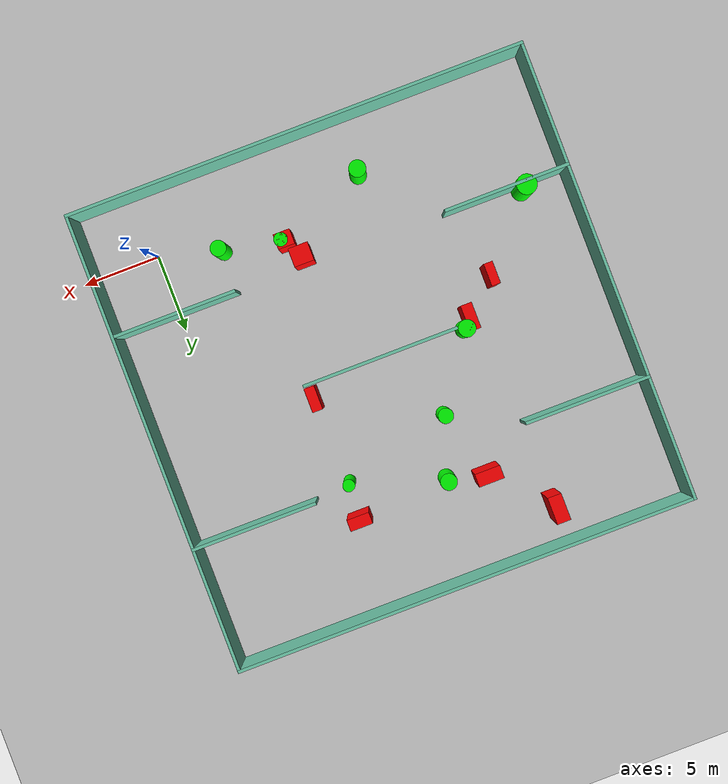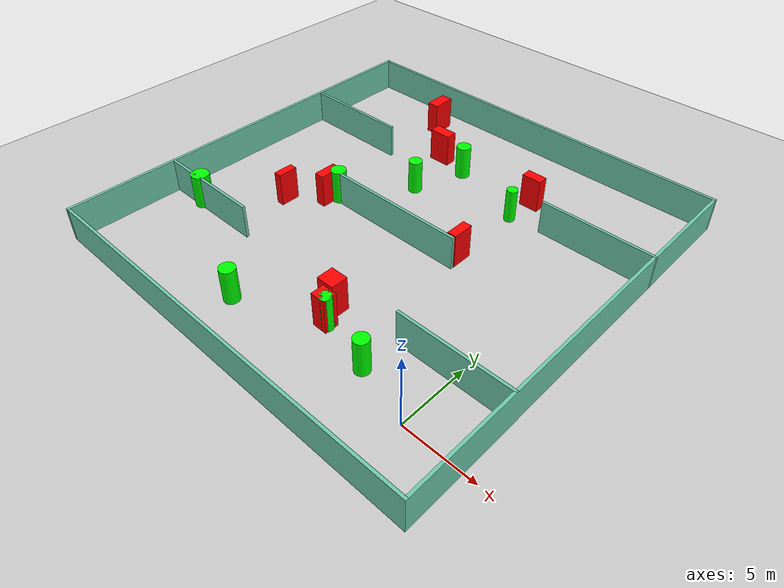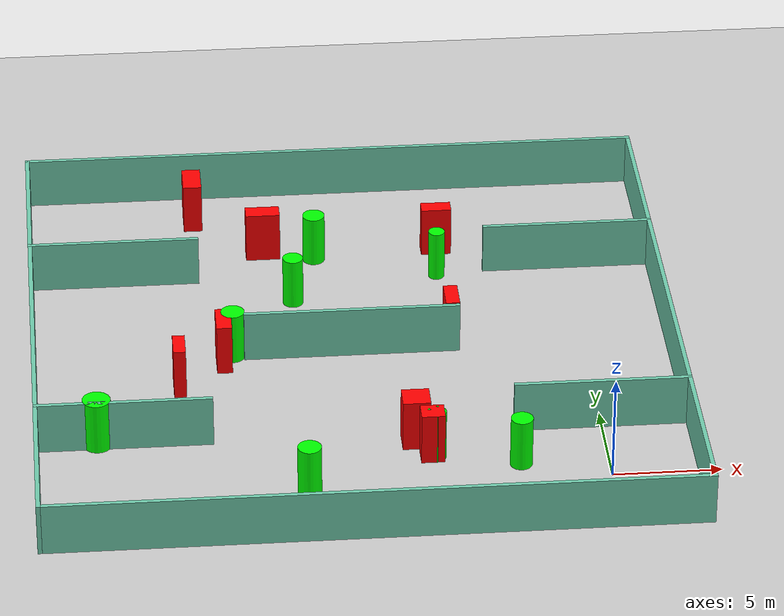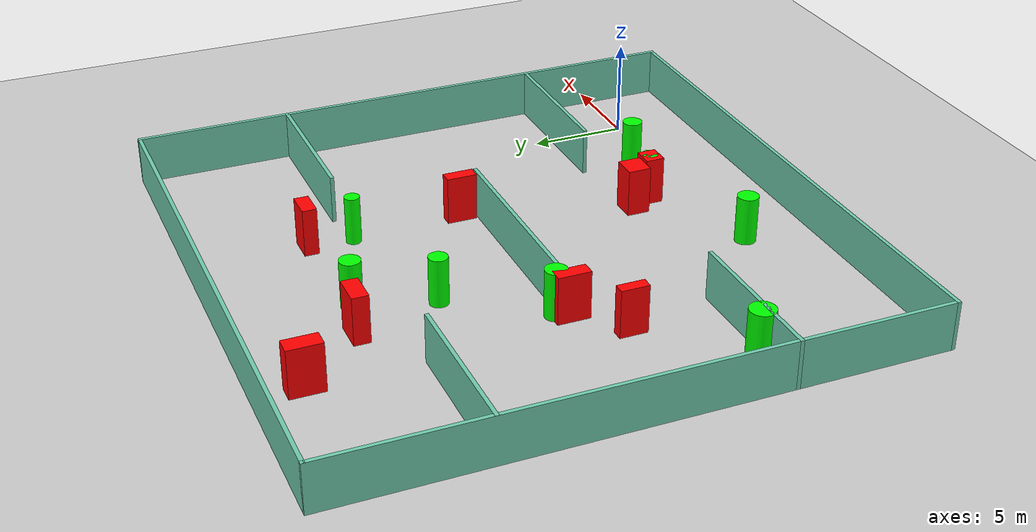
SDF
<sdf version="1.7">
 <world name="default">
  <light name="sun" type="directional">
   <pose>0 0 10 0 -0 0</pose>
   <diffuse>0.8 0.8 0.8 1</diffuse>
   <specular>0.2 0.2 0.2 1</specular>
   <attenuation>
    <range>1000</range>
    <constant>0.9</constant>
    <linear>0.01</linear>
    <quadratic>0.001</quadratic>
   </attenuation>
   <direction>-0.5 0.1 -0.9</direction>
   <spot><inner_angle>0</inner_angle><outer_angle>0</outer_angle><falloff>0</falloff></spot>
  </light>
  <model name="ground_plane">
   <static>1</static>
   <link name="link">
    <collision name="collision">
     <geometry><plane><normal>0 0 1</normal><size>100 100</size></plane></geometry>
     <surface>
      <contact><collide_bitmask>65535</collide_bitmask></contact>
      <friction><ode><mu>100</mu><mu2>50</mu2></ode></friction>
     </surface>
    </collision>
    <visual name="visual">
     <cast_shadows>0</cast_shadows>
     <geometry><plane><normal>0 0 1</normal><size>100 100</size></plane></geometry>
     <material>
      <script><uri>file://media/materials/scripts/gazebo.material</uri><name>Gazebo/Grey</name></script>
     </material>
    </visual>
   </link>
  </model>
  <gravity>0 0 -9.8</gravity>
  <magnetic_field>6e-06 2.3e-05 -4.2e-05</magnetic_field>
  <atmosphere type="adiabatic"/>
  <physics type="ode">
   <max_step_size>0.001</max_step_size>
   <real_time_factor>1</real_time_factor>
   <real_time_update_rate>1000</real_time_update_rate>
  </physics>
  <scene><ambient>0.4 0.4 0.4 1</ambient><background>0.7 0.7 0.7 1</background><shadows>1</shadows></scene>
  <spherical_coordinates>
   <surface_model>EARTH_WGS84</surface_model>
   <latitude_deg>0</latitude_deg>
   <longitude_deg>0</longitude_deg>
   <elevation>0</elevation>
   <heading_deg>0</heading_deg>
  </spherical_coordinates>
  <model name="my_base_walls">
   <link name="Wall_10">
    <collision name="Wall_10_Collision">
     <geometry><box><size>8.2 0.2 2.5</size></box></geometry>
     <pose>0 0 1.25 0 -0 0</pose>
    </collision>
    <visual name="Wall_10_Visual">
     <pose>0 0 1.25 0 -0 0</pose>
     <geometry><box><size>8.2 0.2 2.5</size></box></geometry>
     <material>
      <script><uri>file://media/materials/scripts/gazebo.material</uri><name>Gazebo/Grey</name></script>
      <ambient>0.435294 0.796078 0.67451 1</ambient>
     </material>
     <meta><layer>0</layer></meta>
    </visual>
    <pose>-11 -7 0 0 -0 0</pose>
   </link>
   <link name="Wall_12">
    <collision name="Wall_12_Collision">
     <geometry><box><size>8.2 0.2 2.5</size></box></geometry>
     <pose>0 0 1.25 0 -0 0</pose>
    </collision>
    <visual name="Wall_12_Visual">
     <pose>0 0 1.25 0 -0 0</pose>
     <geometry><box><size>8.2 0.2 2.5</size></box></geometry>
     <material>
      <script><uri>file://media/materials/scripts/gazebo.material</uri><name>Gazebo/Grey</name></script>
      <ambient>0.435294 0.796078 0.67451 1</ambient>
     </material>
     <meta><layer>0</layer></meta>
    </visual>
    <pose>-11 7 0 0 -0 0</pose>
   </link>
   <link name="Wall_14">
    <collision name="Wall_14_Collision">
     <geometry><box><size>8.2 0.2 2.5</size></box></geometry>
     <pose>0 0 1.25 0 -0 0</pose>
    </collision>
    <visual name="Wall_14_Visual">
     <pose>0 0 1.25 0 -0 0</pose>
     <geometry><box><size>8.2 0.2 2.5</size></box></geometry>
     <material>
      <script><uri>file://media/materials/scripts/gazebo.material</uri><name>Gazebo/Grey</name></script>
      <ambient>0.435294 0.796078 0.67451 1</ambient>
     </material>
     <meta><layer>0</layer></meta>
    </visual>
    <pose>11 7 0 0 -0 3.14159</pose>
   </link>
   <link name="Wall_16">
    <collision name="Wall_16_Collision">
     <geometry><box><size>10.2 0.2 2.5</size></box></geometry>
     <pose>0 0 1.25 0 -0 0</pose>
    </collision>
    <visual name="Wall_16_Visual">
     <pose>0 0 1.25 0 -0 0</pose>
     <geometry><box><size>10.2 0.2 2.5</size></box></geometry>
     <material>
      <script><uri>file://media/materials/scripts/gazebo.material</uri><name>Gazebo/Grey</name></script>
      <ambient>0.435294 0.796078 0.67451 1</ambient>
     </material>
     <meta><layer>0</layer></meta>
    </visual>
    <pose>0 0 0 0 -0 3.14159</pose>
   </link>
   <link name="Wall_2">
    <collision name="Wall_2_Collision">
     <geometry><box><size>30.2 0.2 2.5</size></box></geometry>
     <pose>0 0 1.25 0 -0 0</pose>
    </collision>
    <visual name="Wall_2_Visual">
     <pose>0 0 1.25 0 -0 0</pose>
     <geometry><box><size>30.2 0.2 2.5</size></box></geometry>
     <material>
      <script><uri>file://media/materials/scripts/gazebo.material</uri><name>Gazebo/Grey</name></script>
      <ambient>0.435294 0.796078 0.67451 1</ambient>
     </material>
     <meta><layer>0</layer></meta>
    </visual>
    <pose>0 -15 0 0 -0 3.14159</pose>
   </link>
   <link name="Wall_3">
    <collision name="Wall_3_Collision">
     <geometry><box><size>30.2 0.2 2.5</size></box></geometry>
     <pose>0 0 1.25 0 -0 0</pose>
    </collision>
    <visual name="Wall_3_Visual">
     <pose>0 0 1.25 0 -0 0</pose>
     <geometry><box><size>30.2 0.2 2.5</size></box></geometry>
     <material>
      <script><uri>file://media/materials/scripts/gazebo.material</uri><name>Gazebo/Grey</name></script>
      <ambient>0.435294 0.796078 0.67451 1</ambient>
     </material>
     <meta><layer>0</layer></meta>
    </visual>
    <pose>-15 0 0 0 -0 1.5708</pose>
   </link>
   <link name="Wall_4">
    <collision name="Wall_4_Collision">
     <geometry><box><size>30.2 0.2 2.5</size></box></geometry>
     <pose>0 0 1.25 0 -0 0</pose>
    </collision>
    <visual name="Wall_4_Visual">
     <pose>0 0 1.25 0 -0 0</pose>
     <geometry><box><size>30.2 0.2 2.5</size></box></geometry>
     <material>
      <script><uri>file://media/materials/scripts/gazebo.material</uri><name>Gazebo/Grey</name></script>
      <ambient>0.435294 0.796078 0.67451 1</ambient>
     </material>
     <meta><layer>0</layer></meta>
    </visual>
    <pose>0 15 0 0 -0 0</pose>
   </link>
   <link name="Wall_6">
    <collision name="Wall_6_Collision">
     <geometry><box><size>30.2 0.2 2.5</size></box></geometry>
     <pose>0 0 1.25 0 -0 0</pose>
    </collision>
    <visual name="Wall_6_Visual">
     <pose>0 0 1.25 0 -0 0</pose>
     <geometry><box><size>30.2 0.2 2.5</size></box></geometry>
     <material>
      <script><uri>file://media/materials/scripts/gazebo.material</uri><name>Gazebo/Grey</name></script>
      <ambient>0.435294 0.796078 0.67451 1</ambient>
     </material>
     <meta><layer>0</layer></meta>
    </visual>
    <pose>15 0 0 0 -0 1.5708</pose>
   </link>
   <link name="Wall_8">
    <collision name="Wall_8_Collision">
     <geometry><box><size>8.2 0.2 2.5</size></box></geometry>
     <pose>0 0 1.25 0 -0 0</pose>
    </collision>
    <visual name="Wall_8_Visual">
     <pose>0 0 1.25 0 -0 0</pose>
     <geometry><box><size>8.2 0.2 2.5</size></box></geometry>
     <material>
      <script><uri>file://media/materials/scripts/gazebo.material</uri><name>Gazebo/Grey</name></script>
      <ambient>0.435294 0.796078 0.67451 1</ambient>
     </material>
     <meta><layer>0</layer></meta>
    </visual>
    <pose>11 -7 0 0 -0 3.14159</pose>
   </link>
   <static>1</static>
   <pose>-11 11 0 0 -0 0</pose>
  </model>
  <model name="cylinder1">
   <static>1</static>
   <link name="link">
    <inertial>
     <mass>1</mass>
     <inertia><ixx>0.5</ixx><ixy>0</ixy><ixz>0</ixz><iyy>0.5</iyy><iyz>0</iyz><izz>1</izz></inertia>
    </inertial>
    <collision name="collision">
     <geometry><cylinder><radius>0.5353099064793914</radius><length>2.5</length></cylinder></geometry>
    </collision>
    <visual name="visual">
     <geometry><cylinder><radius>0.5353099064793914</radius><length>2.5</length></cylinder></geometry>
     <material>
      <ambient>0 1 0 1</ambient>
      <diffuse>0 1 0 1</diffuse>
      <specular>0.1 0.1 0.1 1</specular>
      <emissive>0 0 0 0</emissive>
     </material>
    </visual>
   </link>
   <pose>-12.206400812486637 19.678023135056286 1.25 0 0 0</pose>
  </model>
  <model name="cylinder2">
   <static>1</static>
   <link name="link">
    <inertial>
     <mass>1</mass>
     <inertia><ixx>0.5</ixx><ixy>0</ixy><ixz>0</ixz><iyy>0.5</iyy><iyz>0</iyz><izz>1</izz></inertia>
    </inertial>
    <collision name="collision">
     <geometry><cylinder><radius>0.43795646091781787</radius><length>2.5</length></cylinder></geometry>
    </collision>
    <visual name="visual">
     <geometry><cylinder><radius>0.43795646091781787</radius><length>2.5</length></cylinder></geometry>
     <material>
      <ambient>0 1 0 1</ambient>
      <diffuse>0 1 0 1</diffuse>
      <specular>0.1 0.1 0.1 1</specular>
      <emissive>0 0 0 0</emissive>
     </material>
    </visual>
   </link>
   <pose>-7.834557004967868 2.049618852593542 1.25 0 0 0</pose>
  </model>
  <model name="cylinder3">
   <static>1</static>
   <link name="link">
    <inertial>
     <mass>1</mass>
     <inertia><ixx>0.5</ixx><ixy>0</ixy><ixz>0</ixz><iyy>0.5</iyy><iyz>0</iyz><izz>1</izz></inertia>
    </inertial>
    <collision name="collision">
     <geometry><cylinder><radius>0.48730370102144827</radius><length>2.5</length></cylinder></geometry>
    </collision>
    <visual name="visual">
     <geometry><cylinder><radius>0.48730370102144827</radius><length>2.5</length></cylinder></geometry>
     <material>
      <ambient>0 1 0 1</ambient>
      <diffuse>0 1 0 1</diffuse>
      <specular>0.1 0.1 0.1 1</specular>
      <emissive>0 0 0 0</emissive>
     </material>
    </visual>
   </link>
   <pose>-13.475208140978346 15.814303782710326 1.25 0 0 0</pose>
  </model>
  <model name="cylinder4">
   <static>1</static>
   <link name="link">
    <inertial>
     <mass>1</mass>
     <inertia><ixx>0.5</ixx><ixy>0</ixy><ixz>0</ixz><iyy>0.5</iyy><iyz>0</iyz><izz>1</izz></inertia>
    </inertial>
    <collision name="collision">
     <geometry><cylinder><radius>0.5134082384226358</radius><length>2.5</length></cylinder></geometry>
    </collision>
    <visual name="visual">
     <geometry><cylinder><radius>0.5134082384226358</radius><length>2.5</length></cylinder></geometry>
     <material>
      <ambient>0 1 0 1</ambient>
      <diffuse>0 1 0 1</diffuse>
      <specular>0.1 0.1 0.1 1</specular>
      <emissive>0 0 0 0</emissive>
     </material>
    </visual>
   </link>
   <pose>-4.048544236788359 1.1916960166761017 1.25 0 0 0</pose>
  </model>
  <model name="cylinder5">
   <static>1</static>
   <link name="link">
    <inertial>
     <mass>1</mass>
     <inertia><ixx>0.5</ixx><ixy>0</ixy><ixz>0</ixz><iyy>0.5</iyy><iyz>0</iyz><izz>1</izz></inertia>
    </inertial>
    <collision name="collision">
     <geometry><cylinder><radius>0.5463759030790425</radius><length>2.5</length></cylinder></geometry>
    </collision>
    <visual name="visual">
     <geometry><cylinder><radius>0.5463759030790425</radius><length>2.5</length></cylinder></geometry>
     <material>
      <ambient>0 1 0 1</ambient>
      <diffuse>0 1 0 1</diffuse>
      <specular>0.1 0.1 0.1 1</specular>
      <emissive>0 0 0 0</emissive>
     </material>
    </visual>
   </link>
   <pose>-13.792764669163777 -0.3496038661333358 1.25 0 0 0</pose>
  </model>
  <model name="cylinder6">
   <static>1</static>
   <link name="link">
    <inertial>
     <mass>1</mass>
     <inertia><ixx>0.5</ixx><ixy>0</ixy><ixz>0</ixz><iyy>0.5</iyy><iyz>0</iyz><izz>1</izz></inertia>
    </inertial>
    <collision name="collision">
     <geometry><cylinder><radius>0.6526958901452664</radius><length>2.5</length></cylinder></geometry>
    </collision>
    <visual name="visual">
     <geometry><cylinder><radius>0.6526958901452664</radius><length>2.5</length></cylinder></geometry>
     <material>
      <ambient>0 1 0 1</ambient>
      <diffuse>0 1 0 1</diffuse>
      <specular>0.1 0.1 0.1 1</specular>
      <emissive>0 0 0 0</emissive>
     </material>
    </visual>
   </link>
   <pose>-23.20274518510204 4.265160882232255 1.25 0 0 0</pose>
  </model>
  <model name="cylinder7">
   <static>1</static>
   <link name="link">
    <inertial>
     <mass>1</mass>
     <inertia><ixx>0.5</ixx><ixy>0</ixy><ixz>0</ixz><iyy>0.5</iyy><iyz>0</iyz><izz>1</izz></inertia>
    </inertial>
    <collision name="collision">
     <geometry><cylinder><radius>0.3923574122108425</radius><length>2.5</length></cylinder></geometry>
    </collision>
    <visual name="visual">
     <geometry><cylinder><radius>0.3923574122108425</radius><length>2.5</length></cylinder></geometry>
     <material>
      <ambient>0 1 0 1</ambient>
      <diffuse>0 1 0 1</diffuse>
      <specular>0.1 0.1 0.1 1</specular>
      <emissive>0 0 0 0</emissive>
     </material>
    </visual>
   </link>
   <pose>-6.37187878659682 17.699188665196896 1.25 0 0 0</pose>
  </model>
  <model name="cylinder8">
   <static>1</static>
   <link name="link">
    <inertial>
     <mass>1</mass>
     <inertia><ixx>0.5</ixx><ixy>0</ixy><ixz>0</ixz><iyy>0.5</iyy><iyz>0</iyz><izz>1</izz></inertia>
    </inertial>
    <collision name="collision">
     <geometry><cylinder><radius>0.55861988952453</radius><length>2.5</length></cylinder></geometry>
    </collision>
    <visual name="visual">
     <geometry><cylinder><radius>0.55861988952453</radius><length>2.5</length></cylinder></geometry>
     <material>
      <ambient>0 1 0 1</ambient>
      <diffuse>0 1 0 1</diffuse>
      <specular>0.1 0.1 0.1 1</specular>
      <emissive>0 0 0 0</emissive>
     </material>
    </visual>
   </link>
   <pose>-16.611872044037817 11.240601804413334 1.25 0 0 0</pose>
  </model>
  <model name="box1">
   <static>1</static>
   <link name="link">
    <inertial>
     <mass>1</mass>
     <inertia><ixx>0.083</ixx><ixy>0</ixy><ixz>0</ixz><iyy>0.083</iyy><iyz>0</iyz><izz>0.083</izz></inertia>
    </inertial>
    <collision name="collision">
     <geometry><box><size>1.2828470845870381 1.203036346101276 2.5</size></box></geometry>
    </collision>
    <visual name="visual">
     <geometry><box><size>1.2828470845870381 1.203036346101276 2.5</size></box></geometry>
     <material>
      <ambient>1 0 0 1</ambient>
      <diffuse>1 0 0 1</diffuse>
      <specular>0.1 0.1 0.1 1</specular>
      <emissive>0 0 0 0</emissive>
     </material>
    </visual>
    <sensor name="my_contact" type="contact">
     <contact><collision>box_collision</collision><topic>__default_topic__</topic></contact>
    </sensor>
   </link>
   <pose>-8.673956371227787 3.3536440347696495 1.25 0 0 0</pose>
  </model>
  <model name="box2">
   <static>1</static>
   <link name="link">
    <inertial>
     <mass>1</mass>
     <inertia><ixx>0.083</ixx><ixy>0</ixy><ixz>0</ixz><iyy>0.083</iyy><iyz>0</iyz><izz>0.083</izz></inertia>
    </inertial>
    <collision name="collision">
     <geometry><box><size>1.650086954314216 0.8403382608978138 2.5</size></box></geometry>
    </collision>
    <visual name="visual">
     <geometry><box><size>1.650086954314216 0.8403382608978138 2.5</size></box></geometry>
     <material>
      <ambient>1 0 0 1</ambient>
      <diffuse>1 0 0 1</diffuse>
      <specular>0.1 0.1 0.1 1</specular>
      <emissive>0 0 0 0</emissive>
     </material>
    </visual>
    <sensor name="my_contact" type="contact">
     <contact><collision>box_collision</collision><topic>__default_topic__</topic></contact>
    </sensor>
   </link>
   <pose>-14.66917925308263 20.239624573574428 1.25 0 0 0</pose>
  </model>
  <model name="box3">
   <static>1</static>
   <link name="link">
    <inertial>
     <mass>1</mass>
     <inertia><ixx>0.083</ixx><ixy>0</ixy><ixz>0</ixz><iyy>0.083</iyy><iyz>0</iyz><izz>0.083</izz></inertia>
    </inertial>
    <collision name="collision">
     <geometry><box><size>0.7259007047050534 1.6861733108896 2.5</size></box></geometry>
    </collision>
    <visual name="visual">
     <geometry><box><size>0.7259007047050534 1.6861733108896 2.5</size></box></geometry>
     <material>
      <ambient>1 0 0 1</ambient>
      <diffuse>1 0 0 1</diffuse>
      <specular>0.1 0.1 0.1 1</specular>
      <emissive>0 0 0 0</emissive>
     </material>
    </visual>
    <sensor name="my_contact" type="contact">
     <contact><collision>box_collision</collision><topic>__default_topic__</topic></contact>
    </sensor>
   </link>
   <pose>-17.07283326857736 10.66235294468786 1.25 0 0 0</pose>
  </model>
  <model name="box4">
   <static>1</static>
   <link name="link">
    <inertial>
     <mass>1</mass>
     <inertia><ixx>0.083</ixx><ixy>0</ixy><ixz>0</ixz><iyy>0.083</iyy><iyz>0</iyz><izz>0.083</izz></inertia>
    </inertial>
    <collision name="collision">
     <geometry><box><size>0.8959460272669593 1.7385887925721168 2.5</size></box></geometry>
    </collision>
    <visual name="visual">
     <geometry><box><size>0.8959460272669593 1.7385887925721168 2.5</size></box></geometry>
     <material>
      <ambient>1 0 0 1</ambient>
      <diffuse>1 0 0 1</diffuse>
      <specular>0.1 0.1 0.1 1</specular>
      <emissive>0 0 0 0</emissive>
     </material>
    </visual>
    <sensor name="my_contact" type="contact">
     <contact><collision>box_collision</collision><topic>__default_topic__</topic></contact>
    </sensor>
   </link>
   <pose>-17.957849724889687 23.64350050485549 1.25 0 0 0</pose>
  </model>
  <model name="box5">
   <static>1</static>
   <link name="link">
    <inertial>
     <mass>1</mass>
     <inertia><ixx>0.083</ixx><ixy>0</ixy><ixz>0</ixz><iyy>0.083</iyy><iyz>0</iyz><izz>0.083</izz></inertia>
    </inertial>
    <collision name="collision">
     <geometry><box><size>1.4448644757437148 0.741601886041066 2.5</size></box></geometry>
    </collision>
    <visual name="visual">
     <geometry><box><size>1.4448644757437148 0.741601886041066 2.5</size></box></geometry>
     <material>
      <ambient>1 0 0 1</ambient>
      <diffuse>1 0 0 1</diffuse>
      <specular>0.1 0.1 0.1 1</specular>
      <emissive>0 0 0 0</emissive>
     </material>
    </visual>
    <sensor name="my_contact" type="contact">
     <contact><collision>box_collision</collision><topic>__default_topic__</topic></contact>
    </sensor>
   </link>
   <pose>-6.1998608135634115 20.022800736237638 1.25 0 0 0</pose>
  </model>
  <model name="box6">
   <static>1</static>
   <link name="link">
    <inertial>
     <mass>1</mass>
     <inertia><ixx>0.083</ixx><ixy>0</ixy><ixz>0</ixz><iyy>0.083</iyy><iyz>0</iyz><izz>0.083</izz></inertia>
    </inertial>
    <collision name="collision">
     <geometry><box><size>0.6633014921636157 1.5569222373564133 2.5</size></box></geometry>
    </collision>
    <visual name="visual">
     <geometry><box><size>0.6633014921636157 1.5569222373564133 2.5</size></box></geometry>
     <material>
      <ambient>1 0 0 1</ambient>
      <diffuse>1 0 0 1</diffuse>
      <specular>0.1 0.1 0.1 1</specular>
      <emissive>0 0 0 0</emissive>
     </material>
    </visual>
    <sensor name="my_contact" type="contact">
     <contact><collision>box_collision</collision><topic>__default_topic__</topic></contact>
    </sensor>
   </link>
   <pose>-6.211724983399655 11.94636083377685 1.25 0 0 0</pose>
  </model>
  <model name="box7">
   <static>1</static>
   <link name="link">
    <inertial>
     <mass>1</mass>
     <inertia><ixx>0.083</ixx><ixy>0</ixy><ixz>0</ixz><iyy>0.083</iyy><iyz>0</iyz><izz>0.083</izz></inertia>
    </inertial>
    <collision name="collision">
     <geometry><box><size>1.0808629392079143 0.970083868751043 2.5</size></box></geometry>
    </collision>
    <visual name="visual">
     <geometry><box><size>1.0808629392079143 0.970083868751043 2.5</size></box></geometry>
     <material>
      <ambient>1 0 0 1</ambient>
      <diffuse>1 0 0 1</diffuse>
      <specular>0.1 0.1 0.1 1</specular>
      <emissive>0 0 0 0</emissive>
     </material>
    </visual>
    <sensor name="my_contact" type="contact">
     <contact><collision>box_collision</collision><topic>__default_topic__</topic></contact>
    </sensor>
   </link>
   <pose>-8.026217435672354 2.098946842122304 1.25 0 0 0</pose>
  </model>
  <model name="box8">
   <static>1</static>
   <link name="link">
    <inertial>
     <mass>1</mass>
     <inertia><ixx>0.083</ixx><ixy>0</ixy><ixz>0</ixz><iyy>0.083</iyy><iyz>0</iyz><izz>0.083</izz></inertia>
    </inertial>
    <collision name="collision">
     <geometry><box><size>0.5771795280125971 1.4422255220116134 2.5</size></box></geometry>
    </collision>
    <visual name="visual">
     <geometry><box><size>0.5771795280125971 1.4422255220116134 2.5</size></box></geometry>
     <material>
      <ambient>1 0 0 1</ambient>
      <diffuse>1 0 0 1</diffuse>
      <specular>0.1 0.1 0.1 1</specular>
      <emissive>0 0 0 0</emissive>
     </material>
    </visual>
    <sensor name="my_contact" type="contact">
     <contact><collision>box_collision</collision><topic>__default_topic__</topic></contact>
    </sensor>
   </link>
   <pose>-19.24728328184768 8.640296120400514 1.25 0 0 0</pose>
  </model>
 </world>
</sdf>
